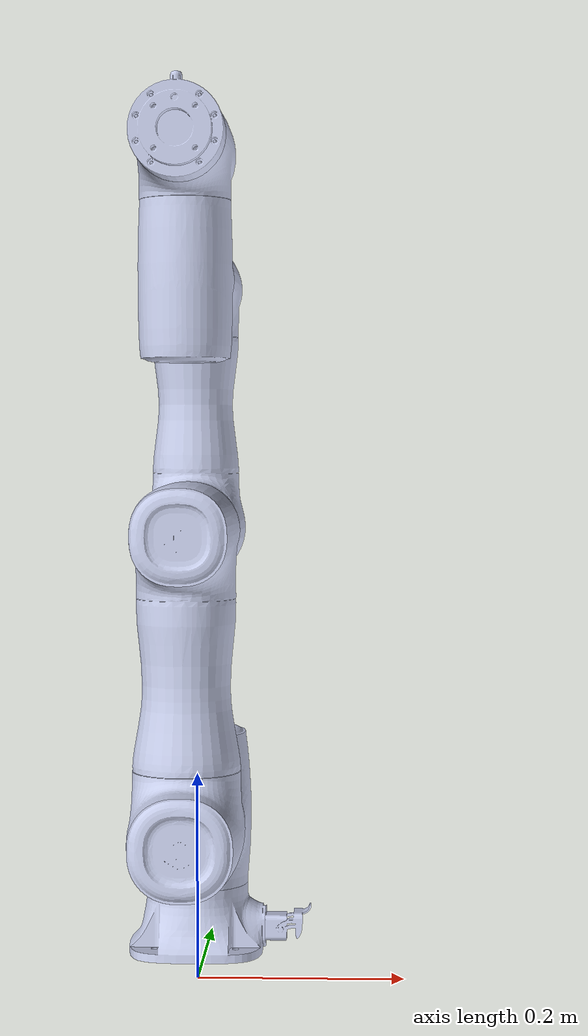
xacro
<?xml version="1.0"?>
<robot name="cr3_robot" xmlns:xacro="http://ros.org/wiki/xacro">
  <link name="dummy_link" />
  <link
    name="base_link">
    <inertial>
      <origin
        xyz="0.00230818905212046 -0.000732843557555838 0.028289656612971"
        rpy="0 0 0" />
      <mass
        value="0.648931294984644" />
      <inertia
        ixx="0.000749921651777976"
        ixy="4.21801992495725E-08"
        ixz="1.27081371753695E-06"
        iyy="0.000839640950438419"
        iyz="1.61611917342073E-07"
        izz="0.00112778981497252" />
    </inertial>
    <visual>
      <origin
        xyz="0 0 0"
        rpy="0 0 0" />
      <geometry>
        <mesh
          filename="file://$(find cra_description)/meshes/cr3/base_link.STL" />
      </geometry>
      <material
        name="">
        <color
          rgba="0.792156862745098 0.819607843137255 0.933333333333333 1" />
      </material>
    </visual>
    <collision>
      <origin
        xyz="0 0 0"
        rpy="0 0 0" />
      <geometry>
        <mesh
          filename="file://$(find cra_description)/meshes/cr3/base_link.STL" />
      </geometry>
    </collision>
  </link>
  <link  name="world"/>
  <joint name="world_joint" type="fixed">
    <origin xyz="0 0 0.03" rpy="0 0 0" />
    <parent link="world" />
    <child  link="dummy_link" />
  </joint>

  <joint name="dummy_joint" type="fixed">
      <parent link="dummy_link" />
      <child  link="base_link" />
    </joint>

  <link
    name="Link1">
    <inertial>
      <origin
        xyz="-3.67781721123111E-05 -0.00394376486631129 0.00364267890020981"
        rpy="0 0 0" />
      <mass
        value="1.31115064359517" />
      <inertia
        ixx="0.00319192385509536"
        ixy="-1.81661180744991E-06"
        ixz="-3.59316770697547E-07"
        iyy="0.00307821666880085"
        iyz="-1.88925967107205E-05"
        izz="0.00190896903282013" />
    </inertial>
    <visual>
      <origin
        xyz="0 0 0"
        rpy="0 0 0" />
      <geometry>
        <mesh
          filename="file://$(find cra_description)/meshes/cr3/J1.STL" />
      </geometry>
      <material
        name="">
        <color
          rgba="0.792156862745098 0.819607843137255 0.933333333333333 1" />
      </material>
    </visual>
    <collision>
      <origin
        xyz="0 0 0"
        rpy="0 0 0" />
      <geometry>
        <mesh
          filename="file://$(find cra_description)/meshes/cr3/J1.STL" />
      </geometry>
    </collision>
  </link>
  <joint
    name="joint1"
    type="revolute">
    <origin
      xyz="0 0 0.1348"
      rpy="0 0 0" />
    <parent
      link="base_link" />
    <child
      link="Link1" />
    <axis
      xyz="0 0 1" />
    <limit
      lower="-6.28"
      upper="6.28"
      effort="300"
      velocity="3.14" />
  </joint>
  <link
    name="Link2">
    <inertial>
      <origin
        xyz="-0.129228226099202 1.43480420269969E-05 0.133174339594273"
        rpy="0 0 0" />
      <mass
        value="3.40049600294342" />
      <inertia
        ixx="0.00665284748175434"
        ixy="1.79448081220597E-06"
        ixz="0.000635378334498705"
        iyy="0.0177342976210456"
        iyz="3.48633745916203E-07"
        izz="0.0150462633110018" />
    </inertial>
    <visual>
      <origin
        xyz="0 0 0"
        rpy="0 0 0" />
      <geometry>
        <mesh
          filename="file://$(find cra_description)/meshes/cr3/J2.STL" />
      </geometry>
      <material
        name="">
        <color
          rgba="0.792156862745098 0.819607843137255 0.933333333333333 1" />
      </material>
    </visual>
    <collision>
      <origin
        xyz="0 0 0"
        rpy="0 0 0" />
      <geometry>
        <mesh
          filename="file://$(find cra_description)/meshes/cr3/J2.STL" />
      </geometry>
    </collision>
  </link>
  <joint
    name="joint2"
    type="revolute">
    <origin
      xyz="0 0 0"
      rpy="1.5708 1.5708 0" />
    <parent
      link="Link1" />
    <child
      link="Link2" />
    <axis
      xyz="0 0 1" />
    <limit
      lower="-6.28"
      upper="6.28"
      effort="300"
      velocity="3.14" />
  </joint>
  <link
    name="Link3">
    <inertial>
      <origin
        xyz="-0.121267841067619 -5.95979094526938E-07 0.0103431444175778"
        rpy="0 0 0" />
      <mass
        value="2.18803928124499" />
      <inertia
        ixx="0.0031393454782363"
        ixy="2.60060285754048E-07"
        ixz="-0.000151120131479005"
        iyy="0.0236694689770697"
        iyz="3.67396297009222E-08"
        izz="0.0225795743545604" />
    </inertial>
    <visual>
      <origin
        xyz="0 0 0"
        rpy="0 0 0" />
      <geometry>
        <mesh
          filename="file://$(find cra_description)/meshes/cr3/J3.STL" />
      </geometry>
      <material
        name="">
        <color
          rgba="0.792156862745098 0.819607843137255 0.933333333333333 1" />
      </material>
    </visual>
    <collision>
      <origin
        xyz="0 0 0"
        rpy="0 0 0" />
      <geometry>
        <mesh
          filename="file://$(find cra_description)/meshes/cr3/J3.STL" />
      </geometry>
    </collision>
  </link>
  <joint
    name="joint3"
    type="revolute">
    <origin
      xyz="-0.274 0 0"
      rpy="0 0 0" />
    <parent
      link="Link2" />
    <child
      link="Link3" />
    <axis
      xyz="0 0 1" />
    <limit
      lower="-2.7039"
      upper="2.7039"
      effort="300"
      velocity="3.14" />
  </joint>
  <link
    name="Link4">
    <inertial>
      <origin
        xyz="1.66290133222139E-07 0.00345100795834197 -0.00287330777509653"
        rpy="0 0 0" />
      <mass
        value="0.842219175919104" />
      <inertia
        ixx="0.00173365879213697"
        ixy="-4.56469972647882E-09"
        ixz="-4.71044121344451E-10"
        iyy="0.000822485798327018"
        iyz="-9.31644060918737E-06"
        izz="0.00169454892249307" />
    </inertial>
    <visual>
      <origin
        xyz="0 0 0"
        rpy="0 0 0" />
      <geometry>
        <mesh
          filename="file://$(find cra_description)/meshes/cr3/J4.STL" />
      </geometry>
      <material
        name="">
        <color
          rgba="0.792156862745098 0.819607843137255 0.933333333333333 1" />
      </material>
    </visual>
    <collision>
      <origin
        xyz="0 0 0"
        rpy="0 0 0" />
      <geometry>
        <mesh
          filename="file://$(find cra_description)/meshes/cr3/J4.STL" />
      </geometry>
    </collision>
  </link>
  <joint
    name="joint4"
    type="revolute">
    <origin
      xyz="-0.23 0 0.1283"
      rpy="0 0 -1.5708" />
    <parent
      link="Link3" />
    <child
      link="Link4" />
    <axis
      xyz="0 0 1" />
    <limit
      lower="-6.28"
      upper="6.28"
      effort="300"
      velocity="3.14" />
  </joint>
  <link
    name="Link5">
    <inertial>
      <origin
        xyz="1.66833832862591E-08 -0.00612503201462095 -0.00127182253112346"
        rpy="0 0 0" />
      <mass
        value="0.741136954868999" />
      <inertia
        ixx="0.00212858333835282"
        ixy="-3.05116516563277E-08"
        ixz="1.84588350647225E-08"
        iyy="0.000739514141681889"
        iyz="5.38479499117246E-05"
        izz="0.00208815449098071" />
    </inertial>
    <visual>
      <origin
        xyz="0 0 0"
        rpy="0 0 0" />
      <geometry>
        <mesh
          filename="file://$(find cra_description)/meshes/cr3/J5.STL" />
      </geometry>
      <material
        name="">
        <color
          rgba="0.792156862745098 0.819607843137255 0.933333333333333 1" />
      </material>
    </visual>
    <collision>
      <origin
        xyz="0 0 0"
        rpy="0 0 0" />
      <geometry>
        <mesh
          filename="file://$(find cra_description)/meshes/cr3/J5.STL" />
      </geometry>
    </collision>
  </link>
  <joint
    name="joint5"
    type="revolute">
    <origin
      xyz="0 -0.116 0"
      rpy="1.5708 0 0" />
    <parent
      link="Link4" />
    <child
      link="Link5" />
    <axis
      xyz="0 0 1" />
    <limit
      lower="-6.28"
      upper="6.28"
      effort="300"
      velocity="3.14" />
  </joint>
  <link
    name="Link6">
    <inertial>
      <origin
        xyz="4.94378411169622E-11 9.37632286146517E-05 -0.019285436425589"
        rpy="0 0 0" />
      <mass
        value="0.157885369717385" />
      <inertia
        ixx="7.94006759268347E-05"
        ixy="4.66210912267001E-15"
        ixz="2.94413427013248E-14"
        iyy="7.91691792019657E-05"
        iyz="-9.61313747365421E-08"
        izz="0.000130860179835048" />
    </inertial>
    <visual>
      <origin
        xyz="0 0 0"
        rpy="0 0 0" />
      <geometry>
        <mesh
          filename="file://$(find cra_description)/meshes/cr3/J6.STL" />
      </geometry>
      <material
        name="">
        <color
          rgba="0.792156862745098 0.819607843137255 0.933333333333333 1" />
      </material>
    </visual>
    <collision>
      <origin
        xyz="0 0 0"
        rpy="0 0 0" />
      <geometry>
        <mesh
          filename="file://$(find cra_description)/meshes/cr3/J6.STL" />
      </geometry>
    </collision>
  </link>
  <joint
    name="joint6"
    type="revolute">
    <origin
      xyz="0 0.105 0"
      rpy="-1.5708 0 0" />
    <parent
      link="Link5" />
    <child
      link="Link6" />
    <axis
      xyz="0 0 1" />
    <limit
      lower="-6.28"
      upper="6.28"
      effort="300"
      velocity="3.14" />
  </joint>
    <gazebo reference="base_link">
        <gravity>false</gravity>
        <selfCollide>true</selfCollide>
    </gazebo>
    <gazebo reference="Link1">
        <gravity>false</gravity>
        <selfCollide>true</selfCollide>
    </gazebo>
    <gazebo reference="Link2">
        <gravity>false</gravity>
        <selfCollide>true</selfCollide>
    </gazebo>
    <gazebo reference="Link3">
        <gravity>false</gravity>
        <selfCollide>true</selfCollide>
    </gazebo>
    <gazebo reference="Link4">
        <gravity>false</gravity>
        <selfCollide>true</selfCollide>
    </gazebo>
    <gazebo reference="Link5">
        <gravity>false</gravity>
        <selfCollide>true</selfCollide>
    </gazebo>
    <gazebo reference="Link6">
        <gravity>false</gravity>
        <selfCollide>true</selfCollide>
    </gazebo>
    <!-- 在运行demo.launch.py时，需要注释这个ros2_control节点，因为它使用了xxx.ros2_control.xacro来生成了ros2_control节点-->
    <ros2_control name="GazeboSystem" type="system">
        <hardware>
            <plugin>gz_ros2_control/GazeboSimSystem</plugin>
        </hardware>
        <joint name="joint1">
            <command_interface name="position">
                <param name="min">-1</param>
                <param name="max">1</param>
            </command_interface>
            <state_interface name="position">
                <param name="initial_value">0.0</param>
            </state_interface>
            <state_interface name="velocity"/>
        </joint>
        <joint name="joint2">
            <command_interface name="position">
                <param name="min">-1</param>
                <param name="max">1</param>
            </command_interface>
            <state_interface name="position">
                <param name="initial_value">0.0</param>
            </state_interface>
            <state_interface name="velocity"/>
        </joint>
        <joint name="joint3">
            <command_interface name="position">
                <param name="min">-1</param>
                <param name="max">1</param>
            </command_interface>
            <state_interface name="position">
                <param name="initial_value">0.0</param>
            </state_interface>
            <state_interface name="velocity"/>
        </joint>
        <joint name="joint4">
            <command_interface name="position">
                <param name="min">-1</param>
                <param name="max">1</param>
            </command_interface>
            <state_interface name="position">
                <param name="initial_value">0.0</param>
            </state_interface>
            <state_interface name="velocity"/>
        </joint>
        <joint name="joint5">
            <command_interface name="position">
                <param name="min">-1</param>
                <param name="max">1</param>
            </command_interface>
            <state_interface name="position">
                <param name="initial_value">0.0</param>
            </state_interface>
            <state_interface name="velocity"/>
        </joint>
        <joint name="joint6">
            <command_interface name="position">
                <param name="min">-1</param>
                <param name="max">1</param>
            </command_interface>
            <state_interface name="position">
                <param name="initial_value">0.0</param>
            </state_interface>
            <state_interface name="velocity"/>
        </joint>
    </ros2_control>

    <gazebo>
        <plugin filename="gz_ros2_control-system" name="gz_ros2_control::GazeboSimROS2ControlPlugin">
            <parameters>$(find cr3_moveit)/config/ros2_controllers.yaml</parameters>
            <robot_param_node>robot_state_publisher</robot_param_node>
        </plugin>
    </gazebo>

</robot>
